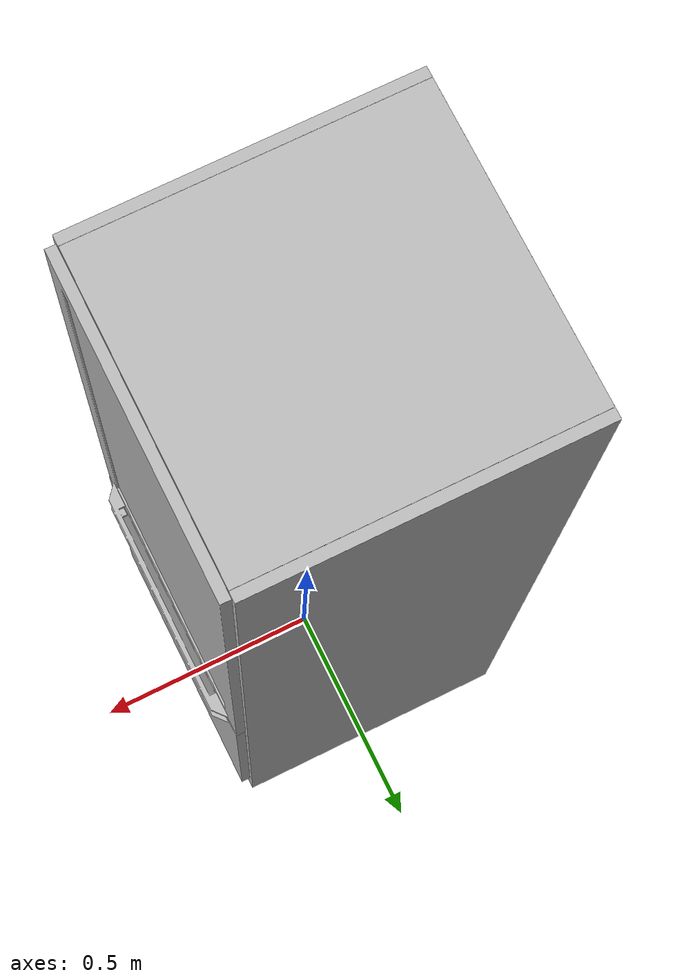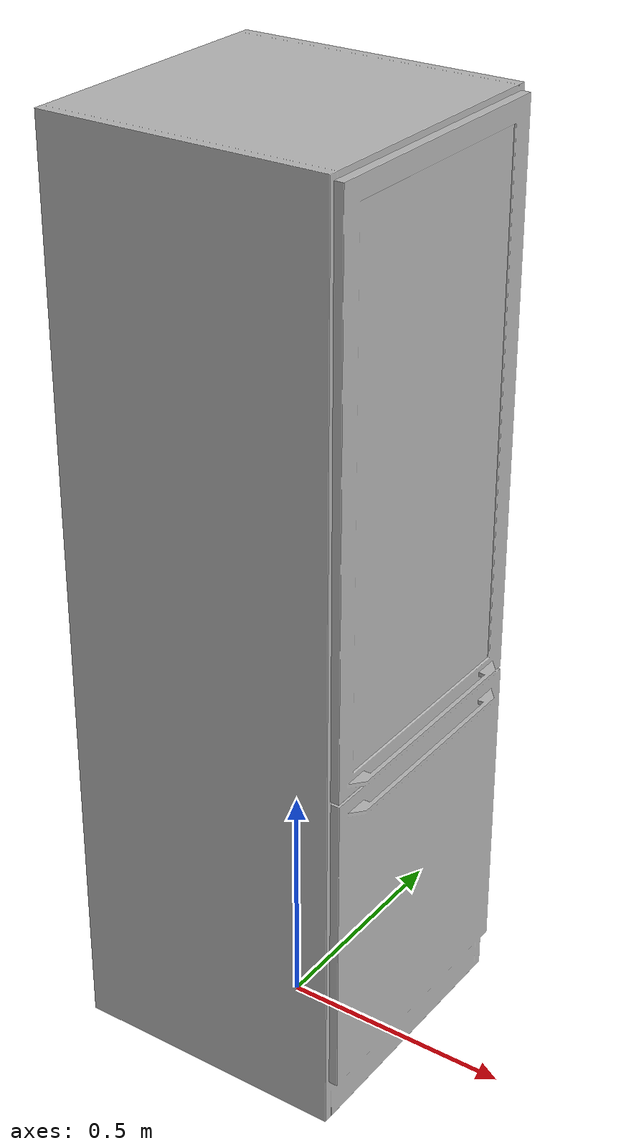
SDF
<?xml version='1.0'?>
<sdf version='1.4'>
  <model name='289'>
    <pose>0 0 0 0 0 0</pose>
    <static>true</static>
    <link name='link'>
      <collision name='collision'>
        <pose>0 0 0 0 0 0</pose>
        <geometry>
          <box>
            <size>0.643084 0.6 2</size>
          </box>
        </geometry>
      </collision>
      <visual name='visual'>
        <pose>0 0 0 0 0 0</pose>
        <geometry>
          <mesh><uri>model://289/289.dae</uri></mesh>
        </geometry>
      </visual>
    </link>
  </model>
</sdf>
